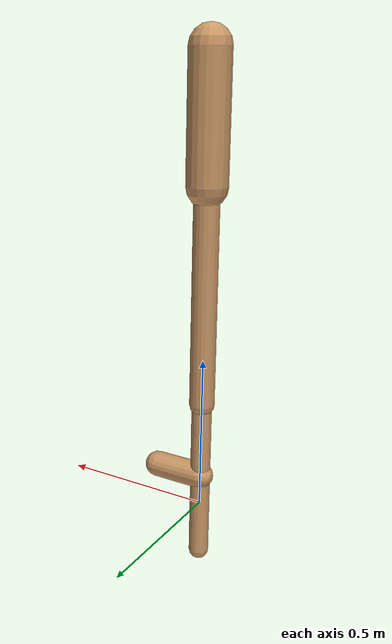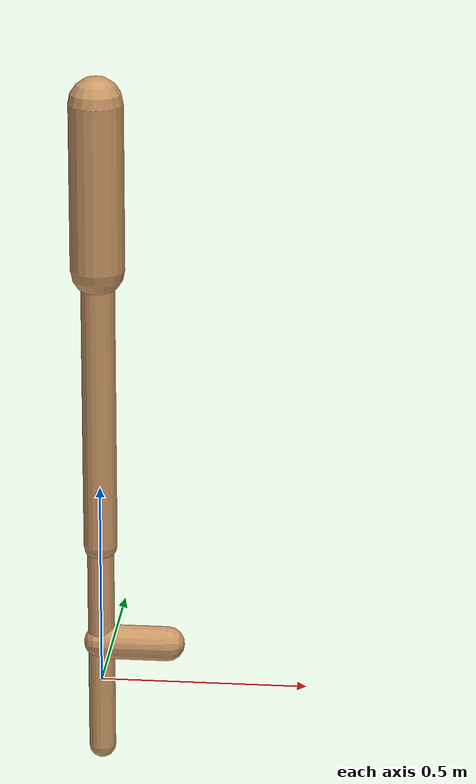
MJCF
<mujoco model="walker2d">
  <compiler angle="degree" coordinate="global" inertiafromgeom="true" />
  <default>
    <joint armature="0.01" damping=".1" limited="true" />
    <geom conaffinity="0" condim="3" contype="1" density="1000" friction="0.8 .1 .1" rgba="0.8 0.6 .4 1" />
  </default>
  <option integrator="RK4" timestep="0.002" />
  <worldbody>

    <body name="torso" pos="0 0 0.5207956601059217">
      <joint armature="0" axis="1 0 0" damping="0" limited="false" name="ignorex" pos="0 0 0" stiffness="0" type="slide" />
      <joint armature="0" axis="0 0 1" damping="0" limited="false" name="ignorez" pos="0 0 0" ref="1.25" stiffness="0" type="slide" />
      <joint armature="0" axis="0 1 0" damping="0" limited="false" name="ignorey" pos="0 0 0" stiffness="0" type="hinge" />
      <geom fromto="0 0 1.45 0 0 1.05" name="torso_geom" size="0.06519678060616192" type="capsule" />
      <body name="thigh">
        <joint axis="0 -1 0" name="thigh_joint" pos="0 0 1.05" range="-150 0" type="hinge" />
        <geom fromto="0.0 0.0 1.05 0.0 0.0 0.3533073188971949" name="thigh_geom" size="0.04078782308506008" type="capsule" />
        <body name="leg" pos="0.0 0.0 -0.24669268110280507">
          <joint axis="0 -1 0" name="leg_joint" pos="0 0 0.6" range="-150 0" type="hinge" />
          <geom fromto="0.0 0.0 0.6 0.0 0.0 -0.1741029790031167" name="leg_geom" size="0.03263025846804806" type="capsule" />
          <body name="foot" pos="0.0 0.0 -0.2741029790031167">
            <joint axis="0 -1 0" name="foot_joint" pos="0 0 0.1" range="-45 45" type="hinge" />
            <geom fromto="0.0 0.0 0.1 0.16085657300567652 0.0 0.1" name="foot_geom" size="0.04241279573630719" type="capsule" />
          </body>
        </body>
      </body>

      <body name="thigh_left">
        <joint axis="0 -1 0" name="thigh_left_joint" pos="0 0 1.05" range="-150 0" type="hinge" />
        <geom fromto="0.0 0.0 1.05 0.0 0.0 0.3533073188971949" name="thigh_left_geom" rgba=".7 .3 .6 1" size="0.04078782308506008" type="capsule" />
        <body name="leg_left" pos="0.0 0.0 -0.24669268110280507">
          <joint axis="0 -1 0" name="leg_left_joint" pos="0 0 0.6" range="-150 0" type="hinge" />
          <geom fromto="0.0 0.0 0.6 0.0 0.0 -0.1741029790031167" name="leg_left_geom" rgba=".7 .3 .6 1" size="0.03263025846804806" type="capsule" />
          <body name="foot_left" pos="0.0 0.0 -0.2741029790031167">
            <joint axis="0 -1 0" name="foot_left_joint" pos="0 0 0.1" range="-45 45" type="hinge" />
            <geom fromto="0.0 0.0 0.1 0.16085657300567652 0.0 0.1" name="foot_left_geom" rgba=".7 .3 .6 1" size="0.04241279573630719" type="capsule" />
          </body>
        </body>
      </body>
    </body>
  </worldbody>
  <actuator>

    <motor ctrllimited="true" ctrlrange="-1.0 1.0" gear="100" joint="thigh_joint" />
    <motor ctrllimited="true" ctrlrange="-1.0 1.0" gear="100" joint="leg_joint" />
    <motor ctrllimited="true" ctrlrange="-1.0 1.0" gear="100" joint="foot_joint" />
    <motor ctrllimited="true" ctrlrange="-1.0 1.0" gear="100" joint="thigh_left_joint" />
    <motor ctrllimited="true" ctrlrange="-1.0 1.0" gear="100" joint="leg_left_joint" />
    <motor ctrllimited="true" ctrlrange="-1.0 1.0" gear="100" joint="foot_left_joint" />

  </actuator>
</mujoco>
